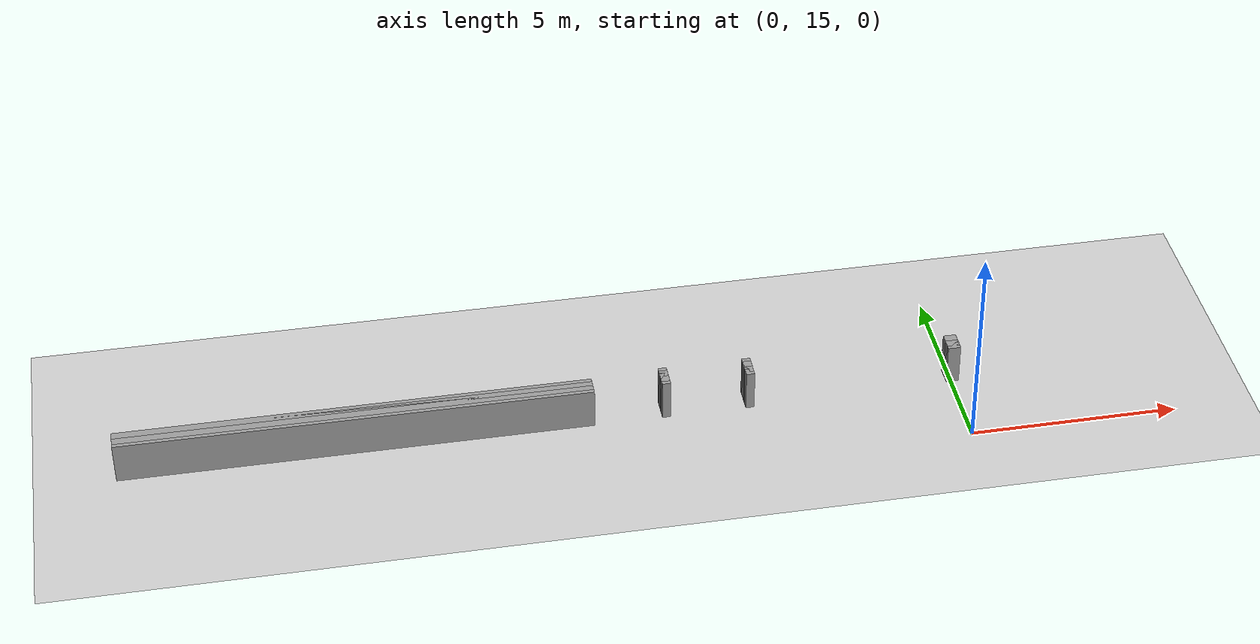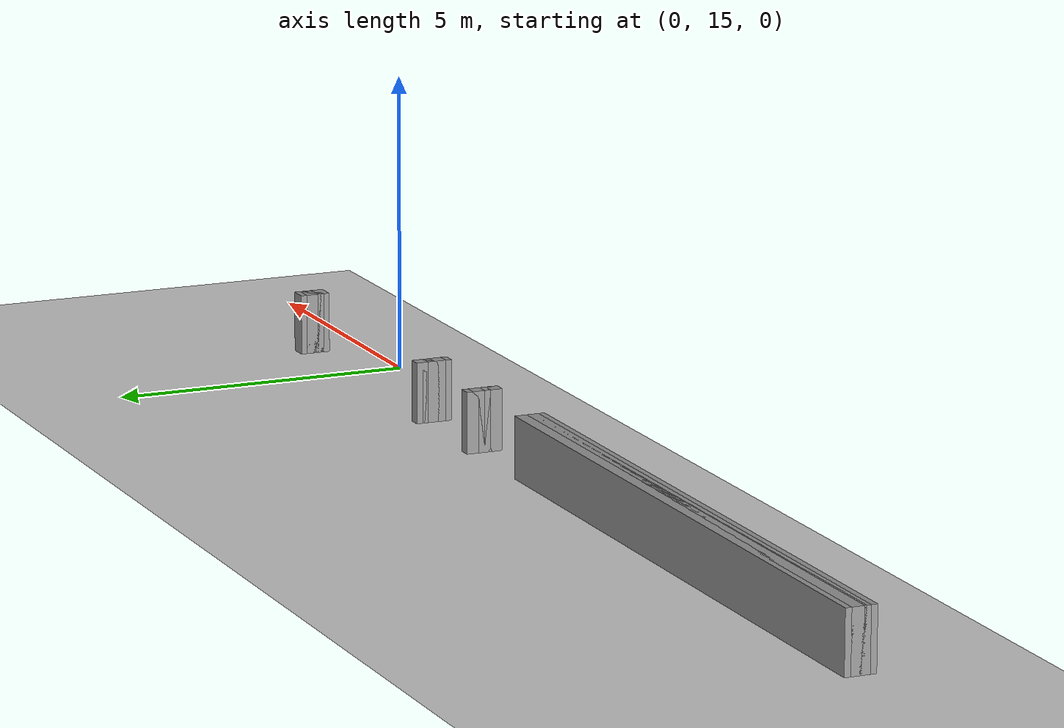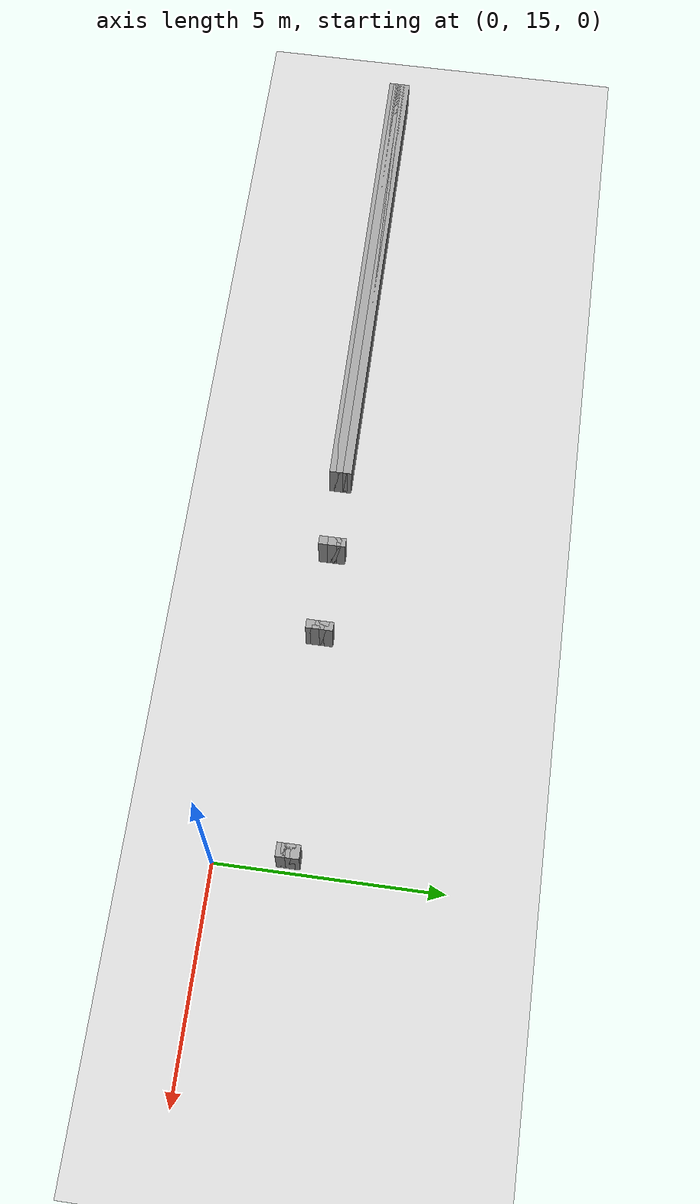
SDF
<sdf version="1.6">
 <world name="GridMap">
  <include><uri>model://sun</uri></include>
  <include><uri>model://ground_plane</uri></include>
  <model name="GridMap">
   <link name="Wall_(51.0,164.0)">
    <collision name="Wall_(51.0,164.0)_Collision">
     <geometry><box><size>0.2 0.2 1.0</size></box></geometry>
     <pose>-5.1000000000000005 16.400000000000002 0.5 0 -0 0</pose>
    </collision>
    <visual name="Wall_(51.0,164.0)_Visual">
     <geometry><box><size>0.2 0.2 1.0</size></box></geometry>
     <pose>-5.1000000000000005 16.400000000000002 0.5 0 -0 0</pose>
     <material>
      <script><uri>file://media/materials/scripts/gazebo.material</uri><name>Gazebo/Grey</name></script>
      <ambient>1 1 1 1</ambient>
     </material>
     <meta><layer>0</layer></meta>
    </visual>
    <pose>0 0 0.5 0 -0 0</pose>
   </link>
   <link name="Wall_(71.0,164.0)">
    <collision name="Wall_(71.0,164.0)_Collision">
     <geometry><box><size>0.2 0.2 1.0</size></box></geometry>
     <pose>-7.1000000000000005 16.400000000000002 0.5 0 -0 0</pose>
    </collision>
    <visual name="Wall_(71.0,164.0)_Visual">
     <geometry><box><size>0.2 0.2 1.0</size></box></geometry>
     <pose>-7.1000000000000005 16.400000000000002 0.5 0 -0 0</pose>
     <material>
      <script><uri>file://media/materials/scripts/gazebo.material</uri><name>Gazebo/Grey</name></script>
      <ambient>1 1 1 1</ambient>
     </material>
     <meta><layer>0</layer></meta>
    </visual>
    <pose>0 0 0.5 0 -0 0</pose>
   </link>
   <link name="Wall_(143.5,164.0)">
    <collision name="Wall_(143.5,164.0)_Collision">
     <geometry><box><size>11.100000000000001 0.2 1.0</size></box></geometry>
     <pose>-14.350000000000001 16.400000000000002 0.5 0 -0 0</pose>
    </collision>
    <visual name="Wall_(143.5,164.0)_Visual">
     <geometry><box><size>11.100000000000001 0.2 1.0</size></box></geometry>
     <pose>-14.350000000000001 16.400000000000002 0.5 0 -0 0</pose>
     <material>
      <script><uri>file://media/materials/scripts/gazebo.material</uri><name>Gazebo/Grey</name></script>
      <ambient>1 1 1 1</ambient>
     </material>
     <meta><layer>0</layer></meta>
    </visual>
    <pose>0 0 0.5 0 -0 0</pose>
   </link>
   <link name="Wall_(1.5,165.0)">
    <collision name="Wall_(1.5,165.0)_Collision">
     <geometry><box><size>0.30000000000000004 0.2 1.0</size></box></geometry>
     <pose>-0.15000000000000002 16.5 0.5 0 -0 0</pose>
    </collision>
    <visual name="Wall_(1.5,165.0)_Visual">
     <geometry><box><size>0.30000000000000004 0.2 1.0</size></box></geometry>
     <pose>-0.15000000000000002 16.5 0.5 0 -0 0</pose>
     <material>
      <script><uri>file://media/materials/scripts/gazebo.material</uri><name>Gazebo/Grey</name></script>
      <ambient>1 1 1 1</ambient>
     </material>
     <meta><layer>0</layer></meta>
    </visual>
    <pose>0 0 0.5 0 -0 0</pose>
   </link>
   <link name="Wall_(51.0,165.0)">
    <collision name="Wall_(51.0,165.0)_Collision">
     <geometry><box><size>0.2 0.2 1.0</size></box></geometry>
     <pose>-5.1000000000000005 16.5 0.5 0 -0 0</pose>
    </collision>
    <visual name="Wall_(51.0,165.0)_Visual">
     <geometry><box><size>0.2 0.2 1.0</size></box></geometry>
     <pose>-5.1000000000000005 16.5 0.5 0 -0 0</pose>
     <material>
      <script><uri>file://media/materials/scripts/gazebo.material</uri><name>Gazebo/Grey</name></script>
      <ambient>1 1 1 1</ambient>
     </material>
     <meta><layer>0</layer></meta>
    </visual>
    <pose>0 0 0.5 0 -0 0</pose>
   </link>
   <link name="Wall_(71.0,165.0)">
    <collision name="Wall_(71.0,165.0)_Collision">
     <geometry><box><size>0.2 0.2 1.0</size></box></geometry>
     <pose>-7.1000000000000005 16.5 0.5 0 -0 0</pose>
    </collision>
    <visual name="Wall_(71.0,165.0)_Visual">
     <geometry><box><size>0.2 0.2 1.0</size></box></geometry>
     <pose>-7.1000000000000005 16.5 0.5 0 -0 0</pose>
     <material>
      <script><uri>file://media/materials/scripts/gazebo.material</uri><name>Gazebo/Grey</name></script>
      <ambient>1 1 1 1</ambient>
     </material>
     <meta><layer>0</layer></meta>
    </visual>
    <pose>0 0 0.5 0 -0 0</pose>
   </link>
   <link name="Wall_(143.5,165.0)">
    <collision name="Wall_(143.5,165.0)_Collision">
     <geometry><box><size>11.100000000000001 0.2 1.0</size></box></geometry>
     <pose>-14.350000000000001 16.5 0.5 0 -0 0</pose>
    </collision>
    <visual name="Wall_(143.5,165.0)_Visual">
     <geometry><box><size>11.100000000000001 0.2 1.0</size></box></geometry>
     <pose>-14.350000000000001 16.5 0.5 0 -0 0</pose>
     <material>
      <script><uri>file://media/materials/scripts/gazebo.material</uri><name>Gazebo/Grey</name></script>
      <ambient>1 1 1 1</ambient>
     </material>
     <meta><layer>0</layer></meta>
    </visual>
    <pose>0 0 0.5 0 -0 0</pose>
   </link>
   <link name="Wall_(1.5,166.0)">
    <collision name="Wall_(1.5,166.0)_Collision">
     <geometry><box><size>0.30000000000000004 0.2 1.0</size></box></geometry>
     <pose>-0.15000000000000002 16.6 0.5 0 -0 0</pose>
    </collision>
    <visual name="Wall_(1.5,166.0)_Visual">
     <geometry><box><size>0.30000000000000004 0.2 1.0</size></box></geometry>
     <pose>-0.15000000000000002 16.6 0.5 0 -0 0</pose>
     <material>
      <script><uri>file://media/materials/scripts/gazebo.material</uri><name>Gazebo/Grey</name></script>
      <ambient>1 1 1 1</ambient>
     </material>
     <meta><layer>0</layer></meta>
    </visual>
    <pose>0 0 0.5 0 -0 0</pose>
   </link>
   <link name="Wall_(51.0,166.0)">
    <collision name="Wall_(51.0,166.0)_Collision">
     <geometry><box><size>0.2 0.2 1.0</size></box></geometry>
     <pose>-5.1000000000000005 16.6 0.5 0 -0 0</pose>
    </collision>
    <visual name="Wall_(51.0,166.0)_Visual">
     <geometry><box><size>0.2 0.2 1.0</size></box></geometry>
     <pose>-5.1000000000000005 16.6 0.5 0 -0 0</pose>
     <material>
      <script><uri>file://media/materials/scripts/gazebo.material</uri><name>Gazebo/Grey</name></script>
      <ambient>1 1 1 1</ambient>
     </material>
     <meta><layer>0</layer></meta>
    </visual>
    <pose>0 0 0.5 0 -0 0</pose>
   </link>
   <link name="Wall_(71.0,166.0)">
    <collision name="Wall_(71.0,166.0)_Collision">
     <geometry><box><size>0.2 0.2 1.0</size></box></geometry>
     <pose>-7.1000000000000005 16.6 0.5 0 -0 0</pose>
    </collision>
    <visual name="Wall_(71.0,166.0)_Visual">
     <geometry><box><size>0.2 0.2 1.0</size></box></geometry>
     <pose>-7.1000000000000005 16.6 0.5 0 -0 0</pose>
     <material>
      <script><uri>file://media/materials/scripts/gazebo.material</uri><name>Gazebo/Grey</name></script>
      <ambient>1 1 1 1</ambient>
     </material>
     <meta><layer>0</layer></meta>
    </visual>
    <pose>0 0 0.5 0 -0 0</pose>
   </link>
   <link name="Wall_(143.5,166.0)">
    <collision name="Wall_(143.5,166.0)_Collision">
     <geometry><box><size>11.100000000000001 0.2 1.0</size></box></geometry>
     <pose>-14.350000000000001 16.6 0.5 0 -0 0</pose>
    </collision>
    <visual name="Wall_(143.5,166.0)_Visual">
     <geometry><box><size>11.100000000000001 0.2 1.0</size></box></geometry>
     <pose>-14.350000000000001 16.6 0.5 0 -0 0</pose>
     <material>
      <script><uri>file://media/materials/scripts/gazebo.material</uri><name>Gazebo/Grey</name></script>
      <ambient>1 1 1 1</ambient>
     </material>
     <meta><layer>0</layer></meta>
    </visual>
    <pose>0 0 0.5 0 -0 0</pose>
   </link>
   <link name="Wall_(1.5,167.0)">
    <collision name="Wall_(1.5,167.0)_Collision">
     <geometry><box><size>0.30000000000000004 0.2 1.0</size></box></geometry>
     <pose>-0.15000000000000002 16.7 0.5 0 -0 0</pose>
    </collision>
    <visual name="Wall_(1.5,167.0)_Visual">
     <geometry><box><size>0.30000000000000004 0.2 1.0</size></box></geometry>
     <pose>-0.15000000000000002 16.7 0.5 0 -0 0</pose>
     <material>
      <script><uri>file://media/materials/scripts/gazebo.material</uri><name>Gazebo/Grey</name></script>
      <ambient>1 1 1 1</ambient>
     </material>
     <meta><layer>0</layer></meta>
    </visual>
    <pose>0 0 0.5 0 -0 0</pose>
   </link>
   <link name="Wall_(51.0,167.0)">
    <collision name="Wall_(51.0,167.0)_Collision">
     <geometry><box><size>0.2 0.2 1.0</size></box></geometry>
     <pose>-5.1000000000000005 16.7 0.5 0 -0 0</pose>
    </collision>
    <visual name="Wall_(51.0,167.0)_Visual">
     <geometry><box><size>0.2 0.2 1.0</size></box></geometry>
     <pose>-5.1000000000000005 16.7 0.5 0 -0 0</pose>
     <material>
      <script><uri>file://media/materials/scripts/gazebo.material</uri><name>Gazebo/Grey</name></script>
      <ambient>1 1 1 1</ambient>
     </material>
     <meta><layer>0</layer></meta>
    </visual>
    <pose>0 0 0.5 0 -0 0</pose>
   </link>
   <link name="Wall_(71.0,167.0)">
    <collision name="Wall_(71.0,167.0)_Collision">
     <geometry><box><size>0.2 0.2 1.0</size></box></geometry>
     <pose>-7.1000000000000005 16.7 0.5 0 -0 0</pose>
    </collision>
    <visual name="Wall_(71.0,167.0)_Visual">
     <geometry><box><size>0.2 0.2 1.0</size></box></geometry>
     <pose>-7.1000000000000005 16.7 0.5 0 -0 0</pose>
     <material>
      <script><uri>file://media/materials/scripts/gazebo.material</uri><name>Gazebo/Grey</name></script>
      <ambient>1 1 1 1</ambient>
     </material>
     <meta><layer>0</layer></meta>
    </visual>
    <pose>0 0 0.5 0 -0 0</pose>
   </link>
   <link name="Wall_(143.5,167.0)">
    <collision name="Wall_(143.5,167.0)_Collision">
     <geometry><box><size>11.100000000000001 0.2 1.0</size></box></geometry>
     <pose>-14.350000000000001 16.7 0.5 0 -0 0</pose>
    </collision>
    <visual name="Wall_(143.5,167.0)_Visual">
     <geometry><box><size>11.100000000000001 0.2 1.0</size></box></geometry>
     <pose>-14.350000000000001 16.7 0.5 0 -0 0</pose>
     <material>
      <script><uri>file://media/materials/scripts/gazebo.material</uri><name>Gazebo/Grey</name></script>
      <ambient>1 1 1 1</ambient>
     </material>
     <meta><layer>0</layer></meta>
    </visual>
    <pose>0 0 0.5 0 -0 0</pose>
   </link>
   <link name="Wall_(1.5,168.0)">
    <collision name="Wall_(1.5,168.0)_Collision">
     <geometry><box><size>0.30000000000000004 0.2 1.0</size></box></geometry>
     <pose>-0.15000000000000002 16.8 0.5 0 -0 0</pose>
    </collision>
    <visual name="Wall_(1.5,168.0)_Visual">
     <geometry><box><size>0.30000000000000004 0.2 1.0</size></box></geometry>
     <pose>-0.15000000000000002 16.8 0.5 0 -0 0</pose>
     <material>
      <script><uri>file://media/materials/scripts/gazebo.material</uri><name>Gazebo/Grey</name></script>
      <ambient>1 1 1 1</ambient>
     </material>
     <meta><layer>0</layer></meta>
    </visual>
    <pose>0 0 0.5 0 -0 0</pose>
   </link>
   <link name="Wall_(51.0,168.0)">
    <collision name="Wall_(51.0,168.0)_Collision">
     <geometry><box><size>0.2 0.2 1.0</size></box></geometry>
     <pose>-5.1000000000000005 16.8 0.5 0 -0 0</pose>
    </collision>
    <visual name="Wall_(51.0,168.0)_Visual">
     <geometry><box><size>0.2 0.2 1.0</size></box></geometry>
     <pose>-5.1000000000000005 16.8 0.5 0 -0 0</pose>
     <material>
      <script><uri>file://media/materials/scripts/gazebo.material</uri><name>Gazebo/Grey</name></script>
      <ambient>1 1 1 1</ambient>
     </material>
     <meta><layer>0</layer></meta>
    </visual>
    <pose>0 0 0.5 0 -0 0</pose>
   </link>
   <link name="Wall_(71.0,168.0)">
    <collision name="Wall_(71.0,168.0)_Collision">
     <geometry><box><size>0.2 0.2 1.0</size></box></geometry>
     <pose>-7.1000000000000005 16.8 0.5 0 -0 0</pose>
    </collision>
    <visual name="Wall_(71.0,168.0)_Visual">
     <geometry><box><size>0.2 0.2 1.0</size></box></geometry>
     <pose>-7.1000000000000005 16.8 0.5 0 -0 0</pose>
     <material>
      <script><uri>file://media/materials/scripts/gazebo.material</uri><name>Gazebo/Grey</name></script>
      <ambient>1 1 1 1</ambient>
     </material>
     <meta><layer>0</layer></meta>
    </visual>
    <pose>0 0 0.5 0 -0 0</pose>
   </link>
   <static>1</static>
  </model>
 </world>
</sdf>
